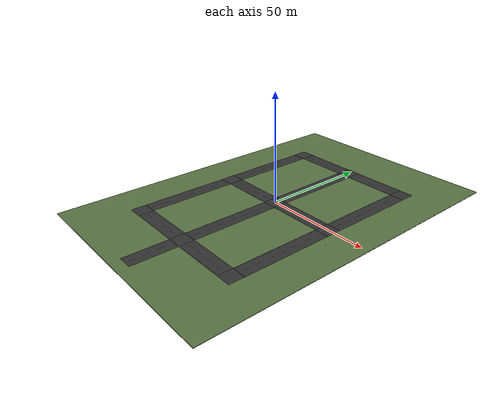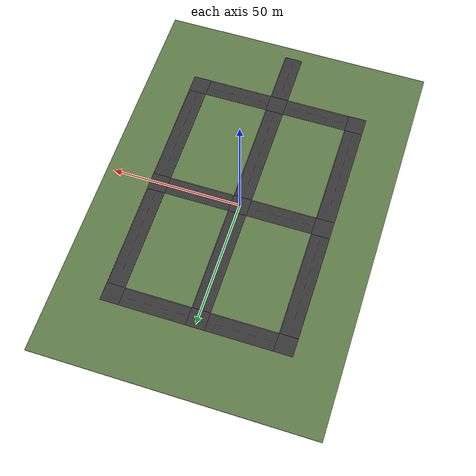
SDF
<sdf version="1.8">
 <world name="ute_city_v1">
  <model name="ground">
   <static>true</static>
   <link name="link">
    <visual name="ground">
     <pose>0 0 -0.1 0 0 0</pose>
     <geometry><box><size>106 154 0.2</size></box></geometry>
     <material>
      <ambient>0.35 0.46 0.27 1</ambient>
      <diffuse>0.35 0.46 0.27 1</diffuse>
      <specular>0.05 0.05 0.05 1</specular>
     </material>
    </visual>
    <collision name="ground_collision">
     <pose>0 0 -0.1 0 0 0</pose>
     <geometry><box><size>106 154 0.2</size></box></geometry>
    </collision>
   </link>
  </model>
  <model name="roads_and_markings">
   <static>true</static>
   <link name="link">
    <visual name="asphalt_0">
     <pose>-32 -24 0.001 0 0 0</pose>
     <geometry><box><size>7 41 0.002</size></box></geometry>
     <material>
      <ambient>0.2 0.2 0.2 1</ambient>
      <diffuse>0.2 0.2 0.2 1</diffuse>
      <specular>0.05 0.05 0.05 1</specular>
     </material>
     <cast_shadows>false</cast_shadows>
    </visual>
    <visual name="edge_0_-1">
     <pose>-35.32 -24 0.005 0 0 0</pose>
     <geometry><box><size>0.12 41 0.002</size></box></geometry>
     <material>
      <ambient>0.95 0.95 0.92 1</ambient>
      <diffuse>0.95 0.95 0.92 1</diffuse>
      <specular>0.05 0.05 0.05 1</specular>
     </material>
     <cast_shadows>false</cast_shadows>
    </visual>
    <visual name="edge_0_1">
     <pose>-28.68 -24 0.005 0 0 0</pose>
     <geometry><box><size>0.12 41 0.002</size></box></geometry>
     <material>
      <ambient>0.95 0.95 0.92 1</ambient>
      <diffuse>0.95 0.95 0.92 1</diffuse>
      <specular>0.05 0.05 0.05 1</specular>
     </material>
     <cast_shadows>false</cast_shadows>
    </visual>
    <visual name="dash_0_0">
     <pose>-32 -41.5 0.005 0 0 0</pose>
     <geometry><box><size>0.12 3 0.002</size></box></geometry>
     <material>
      <ambient>0.95 0.95 0.92 1</ambient>
      <diffuse>0.95 0.95 0.92 1</diffuse>
      <specular>0.05 0.05 0.05 1</specular>
     </material>
     <cast_shadows>false</cast_shadows>
    </visual>
    <visual name="dash_0_1">
     <pose>-32 -35.5 0.005 0 0 0</pose>
     <geometry><box><size>0.12 3 0.002</size></box></geometry>
     <material>
      <ambient>0.95 0.95 0.92 1</ambient>
      <diffuse>0.95 0.95 0.92 1</diffuse>
      <specular>0.05 0.05 0.05 1</specular>
     </material>
     <cast_shadows>false</cast_shadows>
    </visual>
    <visual name="dash_0_2">
     <pose>-32 -29.5 0.005 0 0 0</pose>
     <geometry><box><size>0.12 3 0.002</size></box></geometry>
     <material>
      <ambient>0.95 0.95 0.92 1</ambient>
      <diffuse>0.95 0.95 0.92 1</diffuse>
      <specular>0.05 0.05 0.05 1</specular>
     </material>
     <cast_shadows>false</cast_shadows>
    </visual>
    <visual name="dash_0_3">
     <pose>-32 -23.5 0.005 0 0 0</pose>
     <geometry><box><size>0.12 3 0.002</size></box></geometry>
     <material>
      <ambient>0.95 0.95 0.92 1</ambient>
      <diffuse>0.95 0.95 0.92 1</diffuse>
      <specular>0.05 0.05 0.05 1</specular>
     </material>
     <cast_shadows>false</cast_shadows>
    </visual>
    <visual name="dash_0_4">
     <pose>-32 -17.5 0.005 0 0 0</pose>
     <geometry><box><size>0.12 3 0.002</size></box></geometry>
     <material>
      <ambient>0.95 0.95 0.92 1</ambient>
      <diffuse>0.95 0.95 0.92 1</diffuse>
      <specular>0.05 0.05 0.05 1</specular>
     </material>
     <cast_shadows>false</cast_shadows>
    </visual>
    <visual name="dash_0_5">
     <pose>-32 -11.5 0.005 0 0 0</pose>
     <geometry><box><size>0.12 3 0.002</size></box></geometry>
     <material>
      <ambient>0.95 0.95 0.92 1</ambient>
      <diffuse>0.95 0.95 0.92 1</diffuse>
      <specular>0.05 0.05 0.05 1</specular>
     </material>
     <cast_shadows>false</cast_shadows>
    </visual>
    <visual name="asphalt_1">
     <pose>-32 24 0.001 0 0 0</pose>
     <geometry><box><size>7 41 0.002</size></box></geometry>
     <material>
      <ambient>0.2 0.2 0.2 1</ambient>
      <diffuse>0.2 0.2 0.2 1</diffuse>
      <specular>0.05 0.05 0.05 1</specular>
     </material>
     <cast_shadows>false</cast_shadows>
    </visual>
    <visual name="edge_1_-1">
     <pose>-35.32 24 0.005 0 0 0</pose>
     <geometry><box><size>0.12 41 0.002</size></box></geometry>
     <material>
      <ambient>0.95 0.95 0.92 1</ambient>
      <diffuse>0.95 0.95 0.92 1</diffuse>
      <specular>0.05 0.05 0.05 1</specular>
     </material>
     <cast_shadows>false</cast_shadows>
    </visual>
    <visual name="edge_1_1">
     <pose>-28.68 24 0.005 0 0 0</pose>
     <geometry><box><size>0.12 41 0.002</size></box></geometry>
     <material>
      <ambient>0.95 0.95 0.92 1</ambient>
      <diffuse>0.95 0.95 0.92 1</diffuse>
      <specular>0.05 0.05 0.05 1</specular>
     </material>
     <cast_shadows>false</cast_shadows>
    </visual>
    <visual name="dash_1_0">
     <pose>-32 6.5 0.005 0 0 0</pose>
     <geometry><box><size>0.12 3 0.002</size></box></geometry>
     <material>
      <ambient>0.95 0.95 0.92 1</ambient>
      <diffuse>0.95 0.95 0.92 1</diffuse>
      <specular>0.05 0.05 0.05 1</specular>
     </material>
     <cast_shadows>false</cast_shadows>
    </visual>
    <visual name="dash_1_1">
     <pose>-32 12.5 0.005 0 0 0</pose>
     <geometry><box><size>0.12 3 0.002</size></box></geometry>
     <material>
      <ambient>0.95 0.95 0.92 1</ambient>
      <diffuse>0.95 0.95 0.92 1</diffuse>
      <specular>0.05 0.05 0.05 1</specular>
     </material>
     <cast_shadows>false</cast_shadows>
    </visual>
    <visual name="dash_1_2">
     <pose>-32 18.5 0.005 0 0 0</pose>
     <geometry><box><size>0.12 3 0.002</size></box></geometry>
     <material>
      <ambient>0.95 0.95 0.92 1</ambient>
      <diffuse>0.95 0.95 0.92 1</diffuse>
      <specular>0.05 0.05 0.05 1</specular>
     </material>
     <cast_shadows>false</cast_shadows>
    </visual>
    <visual name="dash_1_3">
     <pose>-32 24.5 0.005 0 0 0</pose>
     <geometry><box><size>0.12 3 0.002</size></box></geometry>
     <material>
      <ambient>0.95 0.95 0.92 1</ambient>
      <diffuse>0.95 0.95 0.92 1</diffuse>
      <specular>0.05 0.05 0.05 1</specular>
     </material>
     <cast_shadows>false</cast_shadows>
    </visual>
    <visual name="dash_1_4">
     <pose>-32 30.5 0.005 0 0 0</pose>
     <geometry><box><size>0.12 3 0.002</size></box></geometry>
     <material>
      <ambient>0.95 0.95 0.92 1</ambient>
      <diffuse>0.95 0.95 0.92 1</diffuse>
      <specular>0.05 0.05 0.05 1</specular>
     </material>
     <cast_shadows>false</cast_shadows>
    </visual>
    <visual name="dash_1_5">
     <pose>-32 36.5 0.005 0 0 0</pose>
     <geometry><box><size>0.12 3 0.002</size></box></geometry>
     <material>
      <ambient>0.95 0.95 0.92 1</ambient>
      <diffuse>0.95 0.95 0.92 1</diffuse>
      <specular>0.05 0.05 0.05 1</specular>
     </material>
     <cast_shadows>false</cast_shadows>
    </visual>
    <visual name="asphalt_2">
     <pose>0 -24 0.001 0 0 0</pose>
     <geometry><box><size>7 41 0.002</size></box></geometry>
     <material>
      <ambient>0.2 0.2 0.2 1</ambient>
      <diffuse>0.2 0.2 0.2 1</diffuse>
      <specular>0.05 0.05 0.05 1</specular>
     </material>
     <cast_shadows>false</cast_shadows>
    </visual>
    <visual name="edge_2_-1">
     <pose>-3.32 -24 0.005 0 0 0</pose>
     <geometry><box><size>0.12 41 0.002</size></box></geometry>
     <material>
      <ambient>0.95 0.95 0.92 1</ambient>
      <diffuse>0.95 0.95 0.92 1</diffuse>
      <specular>0.05 0.05 0.05 1</specular>
     </material>
     <cast_shadows>false</cast_shadows>
    </visual>
    <visual name="edge_2_1">
     <pose>3.32 -24 0.005 0 0 0</pose>
     <geometry><box><size>0.12 41 0.002</size></box></geometry>
     <material>
      <ambient>0.95 0.95 0.92 1</ambient>
      <diffuse>0.95 0.95 0.92 1</diffuse>
      <specular>0.05 0.05 0.05 1</specular>
     </material>
     <cast_shadows>false</cast_shadows>
    </visual>
    <visual name="dash_2_0">
     <pose>0 -41.5 0.005 0 0 0</pose>
     <geometry><box><size>0.12 3 0.002</size></box></geometry>
     <material>
      <ambient>0.95 0.95 0.92 1</ambient>
      <diffuse>0.95 0.95 0.92 1</diffuse>
      <specular>0.05 0.05 0.05 1</specular>
     </material>
     <cast_shadows>false</cast_shadows>
    </visual>
    <visual name="dash_2_1">
     <pose>0 -35.5 0.005 0 0 0</pose>
     <geometry><box><size>0.12 3 0.002</size></box></geometry>
     <material>
      <ambient>0.95 0.95 0.92 1</ambient>
      <diffuse>0.95 0.95 0.92 1</diffuse>
      <specular>0.05 0.05 0.05 1</specular>
     </material>
     <cast_shadows>false</cast_shadows>
    </visual>
    <visual name="dash_2_2">
     <pose>0 -29.5 0.005 0 0 0</pose>
     <geometry><box><size>0.12 3 0.002</size></box></geometry>
     <material>
      <ambient>0.95 0.95 0.92 1</ambient>
      <diffuse>0.95 0.95 0.92 1</diffuse>
      <specular>0.05 0.05 0.05 1</specular>
     </material>
     <cast_shadows>false</cast_shadows>
    </visual>
    <visual name="dash_2_3">
     <pose>0 -23.5 0.005 0 0 0</pose>
     <geometry><box><size>0.12 3 0.002</size></box></geometry>
     <material>
      <ambient>0.95 0.95 0.92 1</ambient>
      <diffuse>0.95 0.95 0.92 1</diffuse>
      <specular>0.05 0.05 0.05 1</specular>
     </material>
     <cast_shadows>false</cast_shadows>
    </visual>
    <visual name="dash_2_4">
     <pose>0 -17.5 0.005 0 0 0</pose>
     <geometry><box><size>0.12 3 0.002</size></box></geometry>
     <material>
      <ambient>0.95 0.95 0.92 1</ambient>
      <diffuse>0.95 0.95 0.92 1</diffuse>
      <specular>0.05 0.05 0.05 1</specular>
     </material>
     <cast_shadows>false</cast_shadows>
    </visual>
    <visual name="dash_2_5">
     <pose>0 -11.5 0.005 0 0 0</pose>
     <geometry><box><size>0.12 3 0.002</size></box></geometry>
     <material>
      <ambient>0.95 0.95 0.92 1</ambient>
      <diffuse>0.95 0.95 0.92 1</diffuse>
      <specular>0.05 0.05 0.05 1</specular>
     </material>
     <cast_shadows>false</cast_shadows>
    </visual>
    <visual name="asphalt_3">
     <pose>0 24 0.001 0 0 0</pose>
     <geometry><box><size>7 41 0.002</size></box></geometry>
     <material>
      <ambient>0.2 0.2 0.2 1</ambient>
      <diffuse>0.2 0.2 0.2 1</diffuse>
      <specular>0.05 0.05 0.05 1</specular>
     </material>
     <cast_shadows>false</cast_shadows>
    </visual>
    <visual name="edge_3_-1">
     <pose>-3.32 24 0.005 0 0 0</pose>
     <geometry><box><size>0.12 41 0.002</size></box></geometry>
     <material>
      <ambient>0.95 0.95 0.92 1</ambient>
      <diffuse>0.95 0.95 0.92 1</diffuse>
      <specular>0.05 0.05 0.05 1</specular>
     </material>
     <cast_shadows>false</cast_shadows>
    </visual>
    <visual name="edge_3_1">
     <pose>3.32 24 0.005 0 0 0</pose>
     <geometry><box><size>0.12 41 0.002</size></box></geometry>
     <material>
      <ambient>0.95 0.95 0.92 1</ambient>
      <diffuse>0.95 0.95 0.92 1</diffuse>
      <specular>0.05 0.05 0.05 1</specular>
     </material>
     <cast_shadows>false</cast_shadows>
    </visual>
    <visual name="dash_3_0">
     <pose>0 6.5 0.005 0 0 0</pose>
     <geometry><box><size>0.12 3 0.002</size></box></geometry>
     <material>
      <ambient>0.95 0.95 0.92 1</ambient>
      <diffuse>0.95 0.95 0.92 1</diffuse>
      <specular>0.05 0.05 0.05 1</specular>
     </material>
     <cast_shadows>false</cast_shadows>
    </visual>
    <visual name="dash_3_1">
     <pose>0 12.5 0.005 0 0 0</pose>
     <geometry><box><size>0.12 3 0.002</size></box></geometry>
     <material>
      <ambient>0.95 0.95 0.92 1</ambient>
      <diffuse>0.95 0.95 0.92 1</diffuse>
      <specular>0.05 0.05 0.05 1</specular>
     </material>
     <cast_shadows>false</cast_shadows>
    </visual>
    <visual name="dash_3_2">
     <pose>0 18.5 0.005 0 0 0</pose>
     <geometry><box><size>0.12 3 0.002</size></box></geometry>
     <material>
      <ambient>0.95 0.95 0.92 1</ambient>
      <diffuse>0.95 0.95 0.92 1</diffuse>
      <specular>0.05 0.05 0.05 1</specular>
     </material>
     <cast_shadows>false</cast_shadows>
    </visual>
    <visual name="dash_3_3">
     <pose>0 24.5 0.005 0 0 0</pose>
     <geometry><box><size>0.12 3 0.002</size></box></geometry>
     <material>
      <ambient>0.95 0.95 0.92 1</ambient>
      <diffuse>0.95 0.95 0.92 1</diffuse>
      <specular>0.05 0.05 0.05 1</specular>
     </material>
     <cast_shadows>false</cast_shadows>
    </visual>
    <visual name="dash_3_4">
     <pose>0 30.5 0.005 0 0 0</pose>
     <geometry><box><size>0.12 3 0.002</size></box></geometry>
     <material>
      <ambient>0.95 0.95 0.92 1</ambient>
      <diffuse>0.95 0.95 0.92 1</diffuse>
      <specular>0.05 0.05 0.05 1</specular>
     </material>
     <cast_shadows>false</cast_shadows>
    </visual>
    <visual name="dash_3_5">
     <pose>0 36.5 0.005 0 0 0</pose>
     <geometry><box><size>0.12 3 0.002</size></box></geometry>
     <material>
      <ambient>0.95 0.95 0.92 1</ambient>
      <diffuse>0.95 0.95 0.92 1</diffuse>
      <specular>0.05 0.05 0.05 1</specular>
     </material>
     <cast_shadows>false</cast_shadows>
    </visual>
    <visual name="asphalt_4">
     <pose>32 -24 0.001 0 0 0</pose>
     <geometry><box><size>7 41 0.002</size></box></geometry>
     <material>
      <ambient>0.2 0.2 0.2 1</ambient>
      <diffuse>0.2 0.2 0.2 1</diffuse>
      <specular>0.05 0.05 0.05 1</specular>
     </material>
     <cast_shadows>false</cast_shadows>
    </visual>
    <visual name="edge_4_-1">
     <pose>28.68 -24 0.005 0 0 0</pose>
     <geometry><box><size>0.12 41 0.002</size></box></geometry>
     <material>
      <ambient>0.95 0.95 0.92 1</ambient>
      <diffuse>0.95 0.95 0.92 1</diffuse>
      <specular>0.05 0.05 0.05 1</specular>
     </material>
     <cast_shadows>false</cast_shadows>
    </visual>
    <visual name="edge_4_1">
     <pose>35.32 -24 0.005 0 0 0</pose>
     <geometry><box><size>0.12 41 0.002</size></box></geometry>
     <material>
      <ambient>0.95 0.95 0.92 1</ambient>
      <diffuse>0.95 0.95 0.92 1</diffuse>
      <specular>0.05 0.05 0.05 1</specular>
     </material>
     <cast_shadows>false</cast_shadows>
    </visual>
    <visual name="dash_4_0">
     <pose>32 -41.5 0.005 0 0 0</pose>
     <geometry><box><size>0.12 3 0.002</size></box></geometry>
     <material>
      <ambient>0.95 0.95 0.92 1</ambient>
      <diffuse>0.95 0.95 0.92 1</diffuse>
      <specular>0.05 0.05 0.05 1</specular>
     </material>
     <cast_shadows>false</cast_shadows>
    </visual>
    <visual name="dash_4_1">
     <pose>32 -35.5 0.005 0 0 0</pose>
     <geometry><box><size>0.12 3 0.002</size></box></geometry>
     <material>
      <ambient>0.95 0.95 0.92 1</ambient>
      <diffuse>0.95 0.95 0.92 1</diffuse>
      <specular>0.05 0.05 0.05 1</specular>
     </material>
     <cast_shadows>false</cast_shadows>
    </visual>
    <visual name="dash_4_2">
     <pose>32 -29.5 0.005 0 0 0</pose>
     <geometry><box><size>0.12 3 0.002</size></box></geometry>
     <material>
      <ambient>0.95 0.95 0.92 1</ambient>
      <diffuse>0.95 0.95 0.92 1</diffuse>
      <specular>0.05 0.05 0.05 1</specular>
     </material>
     <cast_shadows>false</cast_shadows>
    </visual>
    <visual name="dash_4_3">
     <pose>32 -23.5 0.005 0 0 0</pose>
     <geometry><box><size>0.12 3 0.002</size></box></geometry>
     <material>
      <ambient>0.95 0.95 0.92 1</ambient>
      <diffuse>0.95 0.95 0.92 1</diffuse>
      <specular>0.05 0.05 0.05 1</specular>
     </material>
     <cast_shadows>false</cast_shadows>
    </visual>
    <visual name="dash_4_4">
     <pose>32 -17.5 0.005 0 0 0</pose>
     <geometry><box><size>0.12 3 0.002</size></box></geometry>
     <material>
      <ambient>0.95 0.95 0.92 1</ambient>
      <diffuse>0.95 0.95 0.92 1</diffuse>
      <specular>0.05 0.05 0.05 1</specular>
     </material>
     <cast_shadows>false</cast_shadows>
    </visual>
    <visual name="dash_4_5">
     <pose>32 -11.5 0.005 0 0 0</pose>
     <geometry><box><size>0.12 3 0.002</size></box></geometry>
     <material>
      <ambient>0.95 0.95 0.92 1</ambient>
      <diffuse>0.95 0.95 0.92 1</diffuse>
      <specular>0.05 0.05 0.05 1</specular>
     </material>
     <cast_shadows>false</cast_shadows>
    </visual>
    <visual name="asphalt_5">
     <pose>32 24 0.001 0 0 0</pose>
     <geometry><box><size>7 41 0.002</size></box></geometry>
     <material>
      <ambient>0.2 0.2 0.2 1</ambient>
      <diffuse>0.2 0.2 0.2 1</diffuse>
      <specular>0.05 0.05 0.05 1</specular>
     </material>
     <cast_shadows>false</cast_shadows>
    </visual>
    <visual name="edge_5_-1">
     <pose>28.68 24 0.005 0 0 0</pose>
     <geometry><box><size>0.12 41 0.002</size></box></geometry>
     <material>
      <ambient>0.95 0.95 0.92 1</ambient>
      <diffuse>0.95 0.95 0.92 1</diffuse>
      <specular>0.05 0.05 0.05 1</specular>
     </material>
     <cast_shadows>false</cast_shadows>
    </visual>
    <visual name="edge_5_1">
     <pose>35.32 24 0.005 0 0 0</pose>
     <geometry><box><size>0.12 41 0.002</size></box></geometry>
     <material>
      <ambient>0.95 0.95 0.92 1</ambient>
      <diffuse>0.95 0.95 0.92 1</diffuse>
      <specular>0.05 0.05 0.05 1</specular>
     </material>
     <cast_shadows>false</cast_shadows>
    </visual>
    <visual name="dash_5_0">
     <pose>32 6.5 0.005 0 0 0</pose>
     <geometry><box><size>0.12 3 0.002</size></box></geometry>
     <material>
      <ambient>0.95 0.95 0.92 1</ambient>
      <diffuse>0.95 0.95 0.92 1</diffuse>
      <specular>0.05 0.05 0.05 1</specular>
     </material>
     <cast_shadows>false</cast_shadows>
    </visual>
    <visual name="dash_5_1">
     <pose>32 12.5 0.005 0 0 0</pose>
     <geometry><box><size>0.12 3 0.002</size></box></geometry>
     <material>
      <ambient>0.95 0.95 0.92 1</ambient>
      <diffuse>0.95 0.95 0.92 1</diffuse>
      <specular>0.05 0.05 0.05 1</specular>
     </material>
     <cast_shadows>false</cast_shadows>
    </visual>
    <visual name="dash_5_2">
     <pose>32 18.5 0.005 0 0 0</pose>
     <geometry><box><size>0.12 3 0.002</size></box></geometry>
     <material>
      <ambient>0.95 0.95 0.92 1</ambient>
      <diffuse>0.95 0.95 0.92 1</diffuse>
      <specular>0.05 0.05 0.05 1</specular>
     </material>
     <cast_shadows>false</cast_shadows>
    </visual>
    <visual name="dash_5_3">
     <pose>32 24.5 0.005 0 0 0</pose>
     <geometry><box><size>0.12 3 0.002</size></box></geometry>
     <material>
      <ambient>0.95 0.95 0.92 1</ambient>
      <diffuse>0.95 0.95 0.92 1</diffuse>
      <specular>0.05 0.05 0.05 1</specular>
     </material>
     <cast_shadows>false</cast_shadows>
    </visual>
    <visual name="dash_5_4">
     <pose>32 30.5 0.005 0 0 0</pose>
     <geometry><box><size>0.12 3 0.002</size></box></geometry>
     <material>
      <ambient>0.95 0.95 0.92 1</ambient>
      <diffuse>0.95 0.95 0.92 1</diffuse>
      <specular>0.05 0.05 0.05 1</specular>
     </material>
     <cast_shadows>false</cast_shadows>
    </visual>
    <visual name="dash_5_5">
     <pose>32 36.5 0.005 0 0 0</pose>
     <geometry><box><size>0.12 3 0.002</size></box></geometry>
     <material>
      <ambient>0.95 0.95 0.92 1</ambient>
      <diffuse>0.95 0.95 0.92 1</diffuse>
      <specular>0.05 0.05 0.05 1</specular>
     </material>
     <cast_shadows>false</cast_shadows>
    </visual>
    <visual name="asphalt_6">
     <pose>-16 -48 0.001 0 0 0</pose>
     <geometry><box><size>25 7 0.002</size></box></geometry>
     <material>
      <ambient>0.2 0.2 0.2 1</ambient>
      <diffuse>0.2 0.2 0.2 1</diffuse>
      <specular>0.05 0.05 0.05 1</specular>
     </material>
     <cast_shadows>false</cast_shadows>
    </visual>
    <visual name="edge_6_-1">
     <pose>-16 -51.32 0.005 0 0 0</pose>
     <geometry><box><size>25 0.12 0.002</size></box></geometry>
     <material>
      <ambient>0.95 0.95 0.92 1</ambient>
      <diffuse>0.95 0.95 0.92 1</diffuse>
      <specular>0.05 0.05 0.05 1</specular>
     </material>
     <cast_shadows>false</cast_shadows>
    </visual>
    <visual name="edge_6_1">
     <pose>-16 -44.68 0.005 0 0 0</pose>
     <geometry><box><size>25 0.12 0.002</size></box></geometry>
     <material>
      <ambient>0.95 0.95 0.92 1</ambient>
      <diffuse>0.95 0.95 0.92 1</diffuse>
      <specular>0.05 0.05 0.05 1</specular>
     </material>
     <cast_shadows>false</cast_shadows>
    </visual>
    <visual name="dash_6_0">
     <pose>-25.5 -48 0.005 0 0 0</pose>
     <geometry><box><size>3 0.12 0.002</size></box></geometry>
     <material>
      <ambient>0.95 0.95 0.92 1</ambient>
      <diffuse>0.95 0.95 0.92 1</diffuse>
      <specular>0.05 0.05 0.05 1</specular>
     </material>
     <cast_shadows>false</cast_shadows>
    </visual>
    <visual name="dash_6_1">
     <pose>-19.5 -48 0.005 0 0 0</pose>
     <geometry><box><size>3 0.12 0.002</size></box></geometry>
     <material>
      <ambient>0.95 0.95 0.92 1</ambient>
      <diffuse>0.95 0.95 0.92 1</diffuse>
      <specular>0.05 0.05 0.05 1</specular>
     </material>
     <cast_shadows>false</cast_shadows>
    </visual>
    <visual name="dash_6_2">
     <pose>-13.5 -48 0.005 0 0 0</pose>
     <geometry><box><size>3 0.12 0.002</size></box></geometry>
     <material>
      <ambient>0.95 0.95 0.92 1</ambient>
      <diffuse>0.95 0.95 0.92 1</diffuse>
      <specular>0.05 0.05 0.05 1</specular>
     </material>
     <cast_shadows>false</cast_shadows>
    </visual>
    <visual name="dash_6_3">
     <pose>-7.5 -48 0.005 0 0 0</pose>
     <geometry><box><size>3 0.12 0.002</size></box></geometry>
     <material>
      <ambient>0.95 0.95 0.92 1</ambient>
      <diffuse>0.95 0.95 0.92 1</diffuse>
      <specular>0.05 0.05 0.05 1</specular>
     </material>
     <cast_shadows>false</cast_shadows>
    </visual>
    <visual name="asphalt_7">
     <pose>16 -48 0.001 0 0 0</pose>
     <geometry><box><size>25 7 0.002</size></box></geometry>
     <material>
      <ambient>0.2 0.2 0.2 1</ambient>
      <diffuse>0.2 0.2 0.2 1</diffuse>
      <specular>0.05 0.05 0.05 1</specular>
     </material>
     <cast_shadows>false</cast_shadows>
    </visual>
    <visual name="edge_7_-1">
     <pose>16 -51.32 0.005 0 0 0</pose>
     <geometry><box><size>25 0.12 0.002</size></box></geometry>
     <material>
      <ambient>0.95 0.95 0.92 1</ambient>
      <diffuse>0.95 0.95 0.92 1</diffuse>
      <specular>0.05 0.05 0.05 1</specular>
     </material>
     <cast_shadows>false</cast_shadows>
    </visual>
    <visual name="edge_7_1">
     <pose>16 -44.68 0.005 0 0 0</pose>
     <geometry><box><size>25 0.12 0.002</size></box></geometry>
     <material>
      <ambient>0.95 0.95 0.92 1</ambient>
      <diffuse>0.95 0.95 0.92 1</diffuse>
      <specular>0.05 0.05 0.05 1</specular>
     </material>
     <cast_shadows>false</cast_shadows>
    </visual>
    <visual name="dash_7_0">
     <pose>6.5 -48 0.005 0 0 0</pose>
     <geometry><box><size>3 0.12 0.002</size></box></geometry>
     <material>
      <ambient>0.95 0.95 0.92 1</ambient>
      <diffuse>0.95 0.95 0.92 1</diffuse>
      <specular>0.05 0.05 0.05 1</specular>
     </material>
     <cast_shadows>false</cast_shadows>
    </visual>
    <visual name="dash_7_1">
     <pose>12.5 -48 0.005 0 0 0</pose>
     <geometry><box><size>3 0.12 0.002</size></box></geometry>
     <material>
      <ambient>0.95 0.95 0.92 1</ambient>
      <diffuse>0.95 0.95 0.92 1</diffuse>
      <specular>0.05 0.05 0.05 1</specular>
     </material>
     <cast_shadows>false</cast_shadows>
    </visual>
    <visual name="dash_7_2">
     <pose>18.5 -48 0.005 0 0 0</pose>
     <geometry><box><size>3 0.12 0.002</size></box></geometry>
     <material>
      <ambient>0.95 0.95 0.92 1</ambient>
      <diffuse>0.95 0.95 0.92 1</diffuse>
      <specular>0.05 0.05 0.05 1</specular>
     </material>
     <cast_shadows>false</cast_shadows>
    </visual>
    <visual name="dash_7_3">
     <pose>24.5 -48 0.005 0 0 0</pose>
     <geometry><box><size>3 0.12 0.002</size></box></geometry>
     <material>
      <ambient>0.95 0.95 0.92 1</ambient>
      <diffuse>0.95 0.95 0.92 1</diffuse>
      <specular>0.05 0.05 0.05 1</specular>
     </material>
     <cast_shadows>false</cast_shadows>
    </visual>
    <visual name="asphalt_8">
     <pose>-16 0 0.001 0 0 0</pose>
     <geometry><box><size>25 7 0.002</size></box></geometry>
     <material>
      <ambient>0.2 0.2 0.2 1</ambient>
      <diffuse>0.2 0.2 0.2 1</diffuse>
      <specular>0.05 0.05 0.05 1</specular>
     </material>
     <cast_shadows>false</cast_shadows>
    </visual>
    <visual name="edge_8_-1">
     <pose>-16 -3.32 0.005 0 0 0</pose>
     <geometry><box><size>25 0.12 0.002</size></box></geometry>
     <material>
      <ambient>0.95 0.95 0.92 1</ambient>
      <diffuse>0.95 0.95 0.92 1</diffuse>
      <specular>0.05 0.05 0.05 1</specular>
     </material>
     <cast_shadows>false</cast_shadows>
    </visual>
    <visual name="edge_8_1">
     <pose>-16 3.32 0.005 0 0 0</pose>
     <geometry><box><size>25 0.12 0.002</size></box></geometry>
     <material>
      <ambient>0.95 0.95 0.92 1</ambient>
      <diffuse>0.95 0.95 0.92 1</diffuse>
      <specular>0.05 0.05 0.05 1</specular>
     </material>
     <cast_shadows>false</cast_shadows>
    </visual>
    <visual name="dash_8_0">
     <pose>-25.5 0 0.005 0 0 0</pose>
     <geometry><box><size>3 0.12 0.002</size></box></geometry>
     <material>
      <ambient>0.95 0.95 0.92 1</ambient>
      <diffuse>0.95 0.95 0.92 1</diffuse>
      <specular>0.05 0.05 0.05 1</specular>
     </material>
     <cast_shadows>false</cast_shadows>
    </visual>
    <visual name="dash_8_1">
     <pose>-19.5 0 0.005 0 0 0</pose>
     <geometry><box><size>3 0.12 0.002</size></box></geometry>
     <material>
      <ambient>0.95 0.95 0.92 1</ambient>
      <diffuse>0.95 0.95 0.92 1</diffuse>
      <specular>0.05 0.05 0.05 1</specular>
     </material>
     <cast_shadows>false</cast_shadows>
    </visual>
    <visual name="dash_8_2">
     <pose>-13.5 0 0.005 0 0 0</pose>
     <geometry><box><size>3 0.12 0.002</size></box></geometry>
     <material>
      <ambient>0.95 0.95 0.92 1</ambient>
      <diffuse>0.95 0.95 0.92 1</diffuse>
      <specular>0.05 0.05 0.05 1</specular>
     </material>
     <cast_shadows>false</cast_shadows>
    </visual>
    <visual name="dash_8_3">
     <pose>-7.5 0 0.005 0 0 0</pose>
     <geometry><box><size>3 0.12 0.002</size></box></geometry>
     <material>
      <ambient>0.95 0.95 0.92 1</ambient>
      <diffuse>0.95 0.95 0.92 1</diffuse>
      <specular>0.05 0.05 0.05 1</specular>
     </material>
     <cast_shadows>false</cast_shadows>
    </visual>
    <visual name="asphalt_9">
     <pose>16 0 0.001 0 0 0</pose>
     <geometry><box><size>25 7 0.002</size></box></geometry>
     <material>
      <ambient>0.2 0.2 0.2 1</ambient>
      <diffuse>0.2 0.2 0.2 1</diffuse>
      <specular>0.05 0.05 0.05 1</specular>
     </material>
     <cast_shadows>false</cast_shadows>
    </visual>
    <visual name="edge_9_-1">
     <pose>16 -3.32 0.005 0 0 0</pose>
     <geometry><box><size>25 0.12 0.002</size></box></geometry>
     <material>
      <ambient>0.95 0.95 0.92 1</ambient>
      <diffuse>0.95 0.95 0.92 1</diffuse>
      <specular>0.05 0.05 0.05 1</specular>
     </material>
     <cast_shadows>false</cast_shadows>
    </visual>
    <visual name="edge_9_1">
     <pose>16 3.32 0.005 0 0 0</pose>
     <geometry><box><size>25 0.12 0.002</size></box></geometry>
     <material>
      <ambient>0.95 0.95 0.92 1</ambient>
      <diffuse>0.95 0.95 0.92 1</diffuse>
      <specular>0.05 0.05 0.05 1</specular>
     </material>
     <cast_shadows>false</cast_shadows>
    </visual>
    <visual name="dash_9_0">
     <pose>6.5 0 0.005 0 0 0</pose>
     <geometry><box><size>3 0.12 0.002</size></box></geometry>
     <material>
      <ambient>0.95 0.95 0.92 1</ambient>
      <diffuse>0.95 0.95 0.92 1</diffuse>
      <specular>0.05 0.05 0.05 1</specular>
     </material>
     <cast_shadows>false</cast_shadows>
    </visual>
    <visual name="dash_9_1">
     <pose>12.5 0 0.005 0 0 0</pose>
     <geometry><box><size>3 0.12 0.002</size></box></geometry>
     <material>
      <ambient>0.95 0.95 0.92 1</ambient>
      <diffuse>0.95 0.95 0.92 1</diffuse>
      <specular>0.05 0.05 0.05 1</specular>
     </material>
     <cast_shadows>false</cast_shadows>
    </visual>
    <visual name="dash_9_2">
     <pose>18.5 0 0.005 0 0 0</pose>
     <geometry><box><size>3 0.12 0.002</size></box></geometry>
     <material>
      <ambient>0.95 0.95 0.92 1</ambient>
      <diffuse>0.95 0.95 0.92 1</diffuse>
      <specular>0.05 0.05 0.05 1</specular>
     </material>
     <cast_shadows>false</cast_shadows>
    </visual>
    <visual name="dash_9_3">
     <pose>24.5 0 0.005 0 0 0</pose>
     <geometry><box><size>3 0.12 0.002</size></box></geometry>
     <material>
      <ambient>0.95 0.95 0.92 1</ambient>
      <diffuse>0.95 0.95 0.92 1</diffuse>
      <specular>0.05 0.05 0.05 1</specular>
     </material>
     <cast_shadows>false</cast_shadows>
    </visual>
    <visual name="asphalt_10">
     <pose>-16 48 0.001 0 0 0</pose>
     <geometry><box><size>25 7 0.002</size></box></geometry>
     <material>
      <ambient>0.2 0.2 0.2 1</ambient>
      <diffuse>0.2 0.2 0.2 1</diffuse>
      <specular>0.05 0.05 0.05 1</specular>
     </material>
     <cast_shadows>false</cast_shadows>
    </visual>
    <visual name="edge_10_-1">
     <pose>-16 44.68 0.005 0 0 0</pose>
     <geometry><box><size>25 0.12 0.002</size></box></geometry>
     <material>
      <ambient>0.95 0.95 0.92 1</ambient>
      <diffuse>0.95 0.95 0.92 1</diffuse>
      <specular>0.05 0.05 0.05 1</specular>
     </material>
     <cast_shadows>false</cast_shadows>
    </visual>
    <visual name="edge_10_1">
     <pose>-16 51.32 0.005 0 0 0</pose>
     <geometry><box><size>25 0.12 0.002</size></box></geometry>
     <material>
      <ambient>0.95 0.95 0.92 1</ambient>
      <diffuse>0.95 0.95 0.92 1</diffuse>
      <specular>0.05 0.05 0.05 1</specular>
     </material>
     <cast_shadows>false</cast_shadows>
    </visual>
    <visual name="dash_10_0">
     <pose>-25.5 48 0.005 0 0 0</pose>
     <geometry><box><size>3 0.12 0.002</size></box></geometry>
     <material>
      <ambient>0.95 0.95 0.92 1</ambient>
      <diffuse>0.95 0.95 0.92 1</diffuse>
      <specular>0.05 0.05 0.05 1</specular>
     </material>
     <cast_shadows>false</cast_shadows>
    </visual>
    <visual name="dash_10_1">
     <pose>-19.5 48 0.005 0 0 0</pose>
     <geometry><box><size>3 0.12 0.002</size></box></geometry>
     <material>
      <ambient>0.95 0.95 0.92 1</ambient>
      <diffuse>0.95 0.95 0.92 1</diffuse>
      <specular>0.05 0.05 0.05 1</specular>
     </material>
     <cast_shadows>false</cast_shadows>
    </visual>
    <visual name="dash_10_2">
     <pose>-13.5 48 0.005 0 0 0</pose>
     <geometry><box><size>3 0.12 0.002</size></box></geometry>
     <material>
      <ambient>0.95 0.95 0.92 1</ambient>
      <diffuse>0.95 0.95 0.92 1</diffuse>
      <specular>0.05 0.05 0.05 1</specular>
     </material>
     <cast_shadows>false</cast_shadows>
    </visual>
    <visual name="dash_10_3">
     <pose>-7.5 48 0.005 0 0 0</pose>
     <geometry><box><size>3 0.12 0.002</size></box></geometry>
     <material>
      <ambient>0.95 0.95 0.92 1</ambient>
      <diffuse>0.95 0.95 0.92 1</diffuse>
      <specular>0.05 0.05 0.05 1</specular>
     </material>
     <cast_shadows>false</cast_shadows>
    </visual>
    <visual name="asphalt_11">
     <pose>16 48 0.001 0 0 0</pose>
     <geometry><box><size>25 7 0.002</size></box></geometry>
     <material>
      <ambient>0.2 0.2 0.2 1</ambient>
      <diffuse>0.2 0.2 0.2 1</diffuse>
      <specular>0.05 0.05 0.05 1</specular>
     </material>
     <cast_shadows>false</cast_shadows>
    </visual>
    <visual name="edge_11_-1">
     <pose>16 44.68 0.005 0 0 0</pose>
     <geometry><box><size>25 0.12 0.002</size></box></geometry>
     <material>
      <ambient>0.95 0.95 0.92 1</ambient>
      <diffuse>0.95 0.95 0.92 1</diffuse>
      <specular>0.05 0.05 0.05 1</specular>
     </material>
     <cast_shadows>false</cast_shadows>
    </visual>
    <visual name="edge_11_1">
     <pose>16 51.32 0.005 0 0 0</pose>
     <geometry><box><size>25 0.12 0.002</size></box></geometry>
     <material>
      <ambient>0.95 0.95 0.92 1</ambient>
      <diffuse>0.95 0.95 0.92 1</diffuse>
      <specular>0.05 0.05 0.05 1</specular>
     </material>
     <cast_shadows>false</cast_shadows>
    </visual>
    <visual name="dash_11_0">
     <pose>6.5 48 0.005 0 0 0</pose>
     <geometry><box><size>3 0.12 0.002</size></box></geometry>
     <material>
      <ambient>0.95 0.95 0.92 1</ambient>
      <diffuse>0.95 0.95 0.92 1</diffuse>
      <specular>0.05 0.05 0.05 1</specular>
     </material>
     <cast_shadows>false</cast_shadows>
    </visual>
    <visual name="dash_11_1">
     <pose>12.5 48 0.005 0 0 0</pose>
     <geometry><box><size>3 0.12 0.002</size></box></geometry>
     <material>
      <ambient>0.95 0.95 0.92 1</ambient>
      <diffuse>0.95 0.95 0.92 1</diffuse>
      <specular>0.05 0.05 0.05 1</specular>
     </material>
     <cast_shadows>false</cast_shadows>
    </visual>
    <visual name="dash_11_2">
     <pose>18.5 48 0.005 0 0 0</pose>
     <geometry><box><size>3 0.12 0.002</size></box></geometry>
     <material>
      <ambient>0.95 0.95 0.92 1</ambient>
      <diffuse>0.95 0.95 0.92 1</diffuse>
      <specular>0.05 0.05 0.05 1</specular>
     </material>
     <cast_shadows>false</cast_shadows>
    </visual>
    <visual name="dash_11_3">
     <pose>24.5 48 0.005 0 0 0</pose>
     <geometry><box><size>3 0.12 0.002</size></box></geometry>
     <material>
      <ambient>0.95 0.95 0.92 1</ambient>
      <diffuse>0.95 0.95 0.92 1</diffuse>
      <specular>0.05 0.05 0.05 1</specular>
     </material>
     <cast_shadows>false</cast_shadows>
    </visual>
    <visual name="asphalt_12">
     <pose>0 -61.75 0.001 0 0 0</pose>
     <geometry><box><size>7 20.5 0.002</size></box></geometry>
     <material>
      <ambient>0.2 0.2 0.2 1</ambient>
      <diffuse>0.2 0.2 0.2 1</diffuse>
      <specular>0.05 0.05 0.05 1</specular>
     </material>
     <cast_shadows>false</cast_shadows>
    </visual>
    <visual name="edge_12_-1">
     <pose>-3.32 -61.75 0.005 0 0 0</pose>
     <geometry><box><size>0.12 20.5 0.002</size></box></geometry>
     <material>
      <ambient>0.95 0.95 0.92 1</ambient>
      <diffuse>0.95 0.95 0.92 1</diffuse>
      <specular>0.05 0.05 0.05 1</specular>
     </material>
     <cast_shadows>false</cast_shadows>
    </visual>
    <visual name="edge_12_1">
     <pose>3.32 -61.75 0.005 0 0 0</pose>
     <geometry><box><size>0.12 20.5 0.002</size></box></geometry>
     <material>
      <ambient>0.95 0.95 0.92 1</ambient>
      <diffuse>0.95 0.95 0.92 1</diffuse>
      <specular>0.05 0.05 0.05 1</specular>
     </material>
     <cast_shadows>false</cast_shadows>
    </visual>
    <visual name="dash_12_0">
     <pose>0 -69 0.005 0 0 0</pose>
     <geometry><box><size>0.12 3 0.002</size></box></geometry>
     <material>
      <ambient>0.95 0.95 0.92 1</ambient>
      <diffuse>0.95 0.95 0.92 1</diffuse>
      <specular>0.05 0.05 0.05 1</specular>
     </material>
     <cast_shadows>false</cast_shadows>
    </visual>
    <visual name="dash_12_1">
     <pose>0 -63 0.005 0 0 0</pose>
     <geometry><box><size>0.12 3 0.002</size></box></geometry>
     <material>
      <ambient>0.95 0.95 0.92 1</ambient>
      <diffuse>0.95 0.95 0.92 1</diffuse>
      <specular>0.05 0.05 0.05 1</specular>
     </material>
     <cast_shadows>false</cast_shadows>
    </visual>
    <visual name="dash_12_2">
     <pose>0 -57 0.005 0 0 0</pose>
     <geometry><box><size>0.12 3 0.002</size></box></geometry>
     <material>
      <ambient>0.95 0.95 0.92 1</ambient>
      <diffuse>0.95 0.95 0.92 1</diffuse>
      <specular>0.05 0.05 0.05 1</specular>
     </material>
     <cast_shadows>false</cast_shadows>
    </visual>
    <visual name="junction_0_0">
     <pose>-32 -48 0.001 0 0 0</pose>
     <geometry><box><size>7 7 0.002</size></box></geometry>
     <material>
      <ambient>0.2 0.2 0.2 1</ambient>
      <diffuse>0.2 0.2 0.2 1</diffuse>
      <specular>0.05 0.05 0.05 1</specular>
     </material>
     <cast_shadows>false</cast_shadows>
    </visual>
    <visual name="junction_0_1">
     <pose>-32 0 0.001 0 0 0</pose>
     <geometry><box><size>7 7 0.002</size></box></geometry>
     <material>
      <ambient>0.2 0.2 0.2 1</ambient>
      <diffuse>0.2 0.2 0.2 1</diffuse>
      <specular>0.05 0.05 0.05 1</specular>
     </material>
     <cast_shadows>false</cast_shadows>
    </visual>
    <visual name="junction_0_2">
     <pose>-32 48 0.001 0 0 0</pose>
     <geometry><box><size>7 7 0.002</size></box></geometry>
     <material>
      <ambient>0.2 0.2 0.2 1</ambient>
      <diffuse>0.2 0.2 0.2 1</diffuse>
      <specular>0.05 0.05 0.05 1</specular>
     </material>
     <cast_shadows>false</cast_shadows>
    </visual>
    <visual name="junction_1_0">
     <pose>0 -48 0.001 0 0 0</pose>
     <geometry><box><size>7 7 0.002</size></box></geometry>
     <material>
      <ambient>0.2 0.2 0.2 1</ambient>
      <diffuse>0.2 0.2 0.2 1</diffuse>
      <specular>0.05 0.05 0.05 1</specular>
     </material>
     <cast_shadows>false</cast_shadows>
    </visual>
    <visual name="junction_1_1">
     <pose>0 0 0.001 0 0 0</pose>
     <geometry><box><size>7 7 0.002</size></box></geometry>
     <material>
      <ambient>0.2 0.2 0.2 1</ambient>
      <diffuse>0.2 0.2 0.2 1</diffuse>
      <specular>0.05 0.05 0.05 1</specular>
     </material>
     <cast_shadows>false</cast_shadows>
    </visual>
    <visual name="junction_1_2">
     <pose>0 48 0.001 0 0 0</pose>
     <geometry><box><size>7 7 0.002</size></box></geometry>
     <material>
      <ambient>0.2 0.2 0.2 1</ambient>
      <diffuse>0.2 0.2 0.2 1</diffuse>
      <specular>0.05 0.05 0.05 1</specular>
     </material>
     <cast_shadows>false</cast_shadows>
    </visual>
    <visual name="junction_2_0">
     <pose>32 -48 0.001 0 0 0</pose>
     <geometry><box><size>7 7 0.002</size></box></geometry>
     <material>
      <ambient>0.2 0.2 0.2 1</ambient>
      <diffuse>0.2 0.2 0.2 1</diffuse>
      <specular>0.05 0.05 0.05 1</specular>
     </material>
     <cast_shadows>false</cast_shadows>
    </visual>
    <visual name="junction_2_1">
     <pose>32 0 0.001 0 0 0</pose>
     <geometry><box><size>7 7 0.002</size></box></geometry>
     <material>
      <ambient>0.2 0.2 0.2 1</ambient>
      <diffuse>0.2 0.2 0.2 1</diffuse>
      <specular>0.05 0.05 0.05 1</specular>
     </material>
     <cast_shadows>false</cast_shadows>
    </visual>
    <visual name="junction_2_2">
     <pose>32 48 0.001 0 0 0</pose>
     <geometry><box><size>7 7 0.002</size></box></geometry>
     <material>
      <ambient>0.2 0.2 0.2 1</ambient>
      <diffuse>0.2 0.2 0.2 1</diffuse>
      <specular>0.05 0.05 0.05 1</specular>
     </material>
     <cast_shadows>false</cast_shadows>
    </visual>
   </link>
  </model>
 </world>
</sdf>
